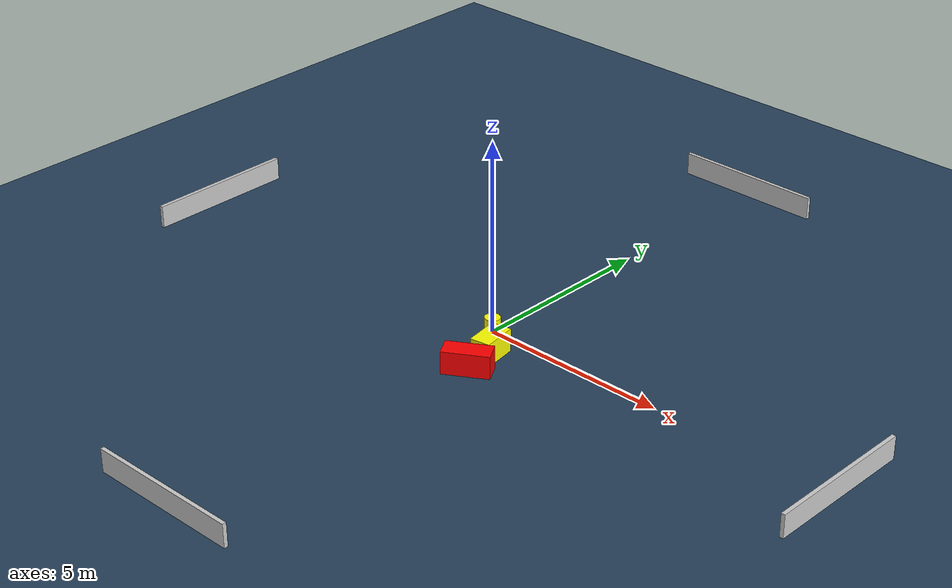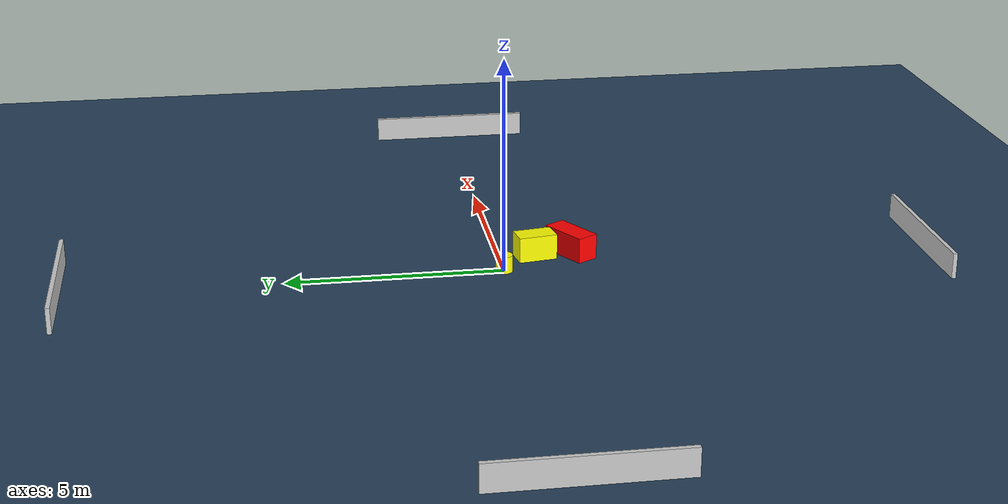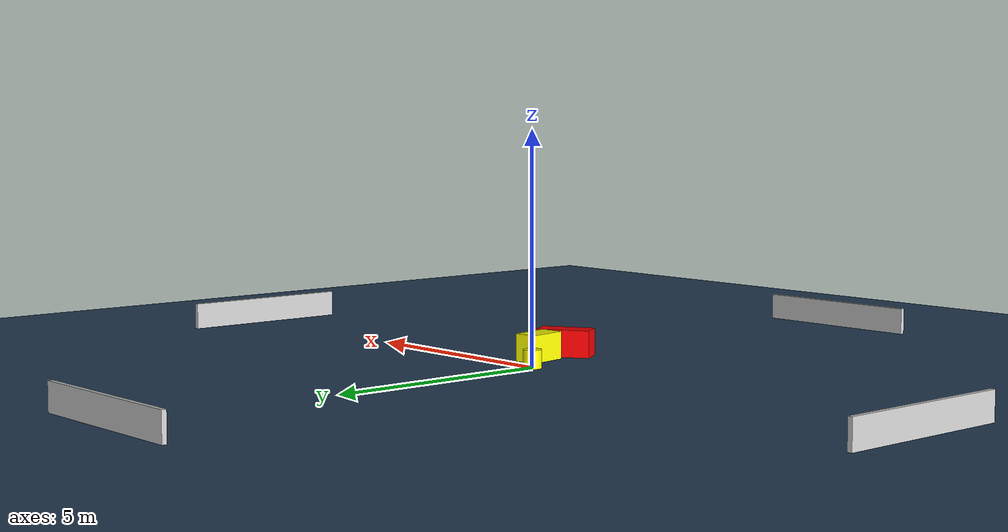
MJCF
<?xml version="1.0" ?>
<mujoco model="generated_environment">
  <option timestep="0.01" integrator="RK4" cone="elliptic"/>
  <default>
    <geom density="1"/>
  </default>
  <asset>
    <texture builtin="gradient" height="3072" name="skybox" rgb1="0.3 0.5 0.7" rgb2="0 0 0" type="skybox" width="512"/>
    <texture builtin="checker" height="300" name="groundplane" rgb1="0.2 0.3 0.4" rgb2="0.1 0.2 0.3" type="2d" width="300"/>
    <material name="groundplane" reflectance="0.2" texrepeat="5 5" texture="groundplane"/>
  </asset>
  <worldbody>
    <light dir="0 0 -1" directional="true" pos="0 0 1.5"/>
    <geom condim="3" friction="0.5 0.005 0.001" material="groundplane" name="floor" pos="0 0 0" size="0 0 0.05" type="plane"/>
    <body name="walls">
      <geom name="wall_1" condim="4" pos="-10.0 0.0 0.3" rgba="0.800000011920929 0.800000011920929 0.800000011920929 1.0" size="0.05 2.0 0.3" type="box"/>
      <geom name="wall_2" condim="4" pos="10.0 0.0 0.3" rgba="0.800000011920929 0.800000011920929 0.800000011920929 1.0" size="0.05 2.0 0.3" type="box"/>
      <geom name="wall_3" condim="4" pos="0.0 -10.0 0.3" rgba="0.800000011920929 0.800000011920929 0.800000011920929 1.0" size="2.0 0.05 0.3" type="box"/>
      <geom name="wall_4" condim="4" pos="0.0 10.0 0.3" rgba="0.800000011920929 0.800000011920929 0.800000011920929 1.0" size="2.0 0.05 0.3" type="box"/>
    </body>
    <body name="robot">
      <joint name="joint_x" type="slide" pos="0 0 0" axis="1 0 0"/>
      <joint name="joint_y" type="slide" pos="0 0 0" axis="0 1 0"/>
      <geom name="robot" type="cylinder" pos="0.0 0.0 0.2" size="0.2 0.2 0.0" mass="5.0" friction="1.0 0.005 0.0001" condim="4" rgba="1.0 1.0 0.0 1.0"/>
    </body>
    <body name="obstacle_1_movable">
      <geom name="obstacle_1_movable" condim="4" pos="0.7338766470441446 -0.842814147231935 0.3" euler="0 0 188.99878048102545" friction="0.0 0.005 0.001" rgba="1.0 1.0 0.0 1.0" size="0.2629099489527752 0.45359073129223415 0.3" type="box" mass="0.1"/>
      <joint type="free"/>
    </body>
    <body name="obstacle_2_static">
      <geom name="obstacle_2_static" condim="4" pos="0.8161605868917069 -1.7079588237918824 0.3" euler="0 0 31.00534788701344" friction="0.0 0.005 0.001" rgba="1.0 0.0 0.0 1.0" size="0.5917185292800102 0.2636926472450561 0.3" type="box"/>
    </body>
  </worldbody>
  <actuator>
    <motor name="actuator_x" joint="joint_x" gear="1" ctrlrange="-1 1"/>
    <motor name="actuator_y" joint="joint_y" gear="1" ctrlrange="-1 1"/>
  </actuator>
</mujoco>
